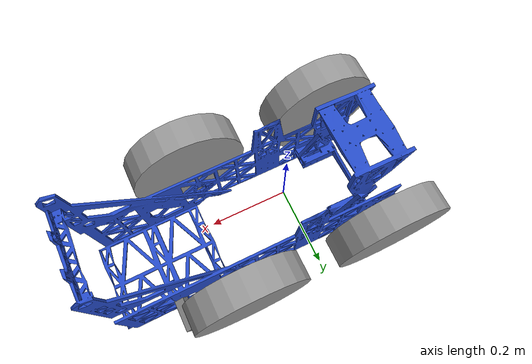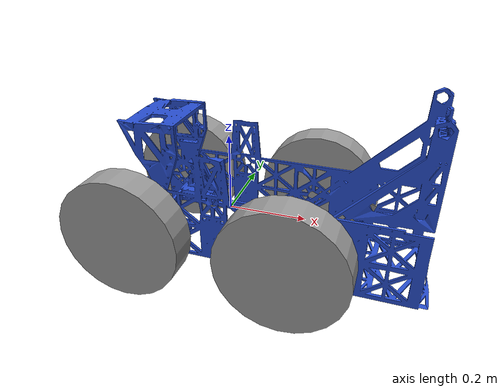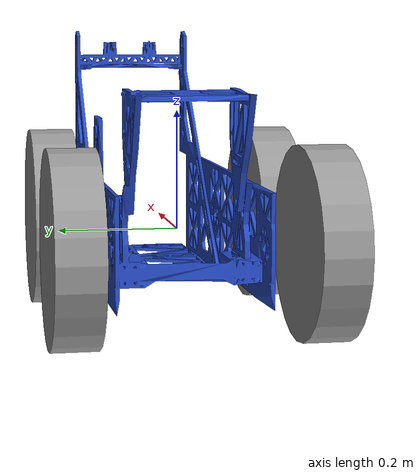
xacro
<?xml version="1.0"?>
<robot name="glennobi" xmlns:xacro="http://www.ros.org/wiki/xacro">

    <xacro:include filename="$(find glennobi_description)/urdf/glennobi.gazebo.xacro"/>
    <xacro:include filename="$(find glennobi_description)/urdf/glennobi.transmission.xacro"/>
    <xacro:include filename="$(find glennobi_description)/urdf/realsense.urdf.xacro"/>

    <!-- NOTE Length=x, Width=y, Height=z-->

    <!-- Values for the robot body-->

    <!-- Units in Meters-->
    <xacro:property name="bodylength" value="0.4577"/>
    <xacro:property name="bodywidth" value="0.9411"/>
    <xacro:property name="bodyheight" value="0.477"/>
    <xacro:property name="wheelradius" value="0.1561"/>
    <xacro:property name="wheelwidth" value="0.0762"/>
    <!-- Distance from the centers of the wheels in the length and width of robot. -->
    <!-- wheelsepx distance from spoke to spoke over 2 -->
    <xacro:property name="wheelsepx" value="${0.3947/2}"/>
    <!-- wheelsepy is from wheel to wheel not crossing the center line-->
    <xacro:property name="wheelsepy" value="0.3175"/>
    <!-- If wheels are not aligned use offset-->
    <xacro:property name="wheeloffsetx" value="0.0"/>

    <!-- body is for aligning the robot mesh to the center of gravity-->
    <!-- Data from cad model
    X = -2.54667
	Y = 0.68615
	Z = 9.90497
    Note not currently used but leaving here because might be useful later-->
    <xacro:property name="bodyx" value="0.13"/>
    <xacro:property name="bodyy" value="0.01"/>
    <xacro:property name="bodyz" value="0.12"/>

    <!-- Controls tilt of robot model-->
    <xacro:property name="bodyroll" value="0"/>
    <xacro:property name="bodypitch" value="0"/>
    <xacro:property name="bodyyaw" value="${pi/2}"/>

    <!-- Note line up robot model first or you will spend time realigning the other sensors-->

    <!-- Inertia Section-->

    <!-- Cadders Inertia Offset-->
    <xacro:property name="robotlengthfromzero" value="-0.282549"/>
    <xacro:property name="robotwidthfromzero" value="0.85221"/>
    <xacro:property name="robotheightfromzero" value="-9.8254"/>

    <!-- Masses unit kg-->

    <xacro:property name="wheelmass" value="1.05216"/>
    <!-- Mass of robot without wheels-->
    <xacro:property name="robotmass" value="30.8"/>

    <!-- Inertial values for robot units kg/m^2-->
    <xacro:property name="robotlxx" value="0.385"/>
    <xacro:property name="robotlxy" value="0"/>
    <xacro:property name="robotlxz" value="0"/>
    <xacro:property name="robotlyy" value="1.92098166"/>
    <xacro:property name="robotlyz" value="0"/>
    <xacro:property name="robotlzz" value="1.844169"/>

    <!-- Inertial values for wheels units kg/m^2-->
    <xacro:macro name="cylinder_inertia" params="m r h">
      <inertia  ixx="${m*(3*r*r+h*h)/12}" ixy = "0" ixz = "0"
        iyy="${m*(3*r*r+h*h)/12}" iyz = "0"
        izz="${m*r*r/2}"/>
    </xacro:macro>

    <xacro:macro name="wheel" params="prefix side reflect">
        <link name="${prefix}_wheel_link">
            <visual>
                <origin xyz="0 0 0" rpy="${pi/2} 0 0"/>
                <geometry>
                    <cylinder radius="${wheelradius}" length="${wheelwidth}"/>
                </geometry>
            </visual>
            <collision>
                <!-- cylinder origin different than mesh origin -->
                <origin xyz="0 0 0" rpy="${pi/2} 0 0"/>
                <geometry>
                    <cylinder radius="${wheelradius}" length="${wheelwidth}"/>
                </geometry>
            </collision>
            <inertial>
                <origin xyz="0 0 0" rpy="${pi/2} 0 0" />
                <mass value="${wheelmass}"/>
                <xacro:cylinder_inertia m="${wheelmass}" r="${wheelradius}" h="${wheelwidth}"/>
            </inertial>
        </link>

        <!-- set gazebo wheel properties -->
        <xacro:wheel_gazebo prefix="${prefix}"/>

        <joint name="${prefix}_wheel_joint" type="continuous">
            <parent link="base_link"/>
            <child link="${prefix}_wheel_link"/>
            <origin xyz="${side*wheelsepx + wheeloffsetx} ${reflect*(wheelsepy/2 + wheelwidth/2)} 0"/>
            <axis xyz="0 1 0"/>
            <dynamics damping="0.8" friction="2.0"/>
        </joint>

        <!-- set wheel transmission properties -->
        <xacro:wheel_transmission prefix="${prefix}"/>

    </xacro:macro>

    <link name="base_link">
        <visual>
            <origin xyz="${bodyx} ${bodyy} ${bodyz}" rpy="${bodyroll} ${bodypitch} ${bodyyaw}"/>
            <geometry>
                <mesh filename="package://glennobi_description/meshes/chassis.dae"/>
            </geometry>
        </visual>
        <collision>
            <origin xyz="${bodyx} ${bodyy} ${bodyz}" rpy="${bodyroll} ${bodypitch} ${bodyyaw}"/>
            <geometry>
                <mesh filename="package://glennobi_description/meshes/chassis.dae"/>
            </geometry>
        </collision>
        <inertial>
            <mass value="${robotmass}"/>
            <inertia ixx="${robotlxx}" ixy="${robotlxy}" ixz="${robotlxz}" iyy="${robotlyy}" iyz="${robotlyz}" izz="${robotlzz}" />
        </inertial>
    </link>

    <xacro:wheel prefix="front_right" side="1" reflect="-1"/>
    <xacro:wheel prefix="front_left" side="1" reflect="1"/>
    <xacro:wheel prefix="back_right" side="-1" reflect="-1"/>
    <xacro:wheel prefix="back_left" side="-1" reflect="1"/>

    <xacro:realsense name="realsense"/>

    <!-- Waiting on this location from CAD people-->
    <link name="imu_link"/>
    <joint name="imu_joint" type="fixed">
        <parent link="base_link"/>
        <child link="imu_link"/>
        <origin xyz="0.35 -0.1 0" rpy="0 0 0"/>
    </joint>
</robot>

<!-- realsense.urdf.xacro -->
<robot name="realsense" xmlns:xacro="http://ros.org/wiki/xacro">
  <xacro:macro name="realsense" params="name">

    <!-- The following values are approximate, and the camera node
     publishing TF values with actual calibrated camera extrinsic values -->
    <xacro:property name="d435_cam_depth_to_infra1_offset" value="0.0"/>
    <xacro:property name="d435_cam_depth_to_infra2_offset" value="-0.050"/>
    <xacro:property name="d435_cam_depth_to_color_offset" value="0.015"/>

    <!-- The following values model the aluminum peripherial case for the
    D435 camera, with the camera joint represented by the actual
    peripherial camera tripod mount -->
    <xacro:property name="d435_cam_width" value="0.090"/>
    <xacro:property name="d435_cam_height" value="0.025"/>
    <xacro:property name="d435_cam_depth" value="0.02505"/>
    <xacro:property name="d435_cam_mount_from_center_offset" value="0.0149"/>

    <!-- The following offset is relative the the physical D435 camera peripherial
    camera tripod mount -->
    <xacro:property name="d435_cam_depth_px" value="${d435_cam_mount_from_center_offset}"/>
    <xacro:property name="d435_cam_depth_py" value="0.0175"/>
    <xacro:property name="d435_cam_depth_pz" value="${d435_cam_height/2}"/>

    <!-- Our robot's coordinates to RealSense-->
    <xacro:macro name="realsense_origin">
      <origin xyz="0.35 0.152 -0.01" rpy="${-(20.42 + 90) * pi/180} 0 ${-pi/2}"/>
    </xacro:macro>

    <material name="${name}_aluminum">
      <color rgba="0.5 0.5 0.5 1"/>
    </material>

    <link name="${name}_link">
      <visual>
        <!-- offset to location of a lens -->
        <origin xyz="${-d435_cam_depth_py} 0 0" rpy="${pi/2} 0 0"/>
        <geometry>
          <box size="${d435_cam_width} ${d435_cam_height} ${d435_cam_depth}"/>
        </geometry>
        <material name="${name}_aluminum"/>
      </visual>
      <collision>
        <origin xyz="${-d435_cam_depth_py} 0 0" rpy="0 0 0"/>
        <geometry>
          <box size="${d435_cam_depth} ${d435_cam_width} ${d435_cam_height}"/>
        </geometry>
      </collision>
    </link>

    <joint name="${name}_joint" type="fixed">
      <parent link="base_link"/>
      <child link="${name}_link"/>
      <xacro:realsense_origin/>
    </joint>

    <link name="${name}_gyro_link"/>

    <joint name="${name}_gyro_joint" type="fixed">
      <parent link="${name}_link"/>
      <child link="${name}_gyro_link"/>
      <!-- transform from realsense_link with additional 20 degree tilt down -->
      <origin xyz="0 0 0" rpy="${-(20+90)*pi/180} 0 0"/>
    </joint>
  </xacro:macro>
</robot>
